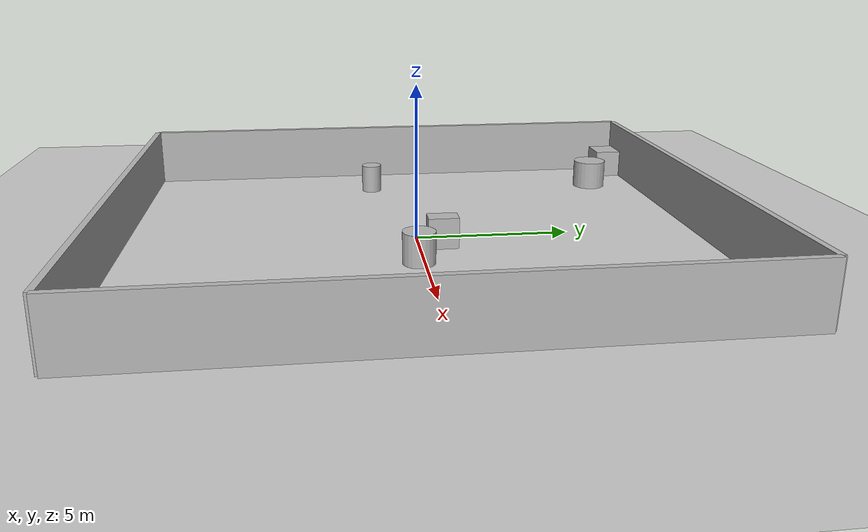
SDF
<?xml version="1.0"?>
<sdf version="1.6">
  <world name="env_49">

    <include><uri>model://ground_plane</uri></include>
    <include><uri>model://sun</uri></include>

    <!-- WALLS -->
    <model name="wall_north"><static>true</static><pose>0 9.343123903825912 1 0 0 0</pose>
      <link name="link"><collision name="collision">
        <geometry><box><size>16.210290307767416 0.2 2</size></box></geometry>
      </collision><visual name="visual">
        <geometry><box><size>16.210290307767416 0.2 2</size></box></geometry>
      </visual></link>
    </model>

    <model name="wall_south"><static>true</static><pose>0 -9.343123903825912 1 0 0 0</pose>
      <link name="link"><collision name="collision">
        <geometry><box><size>16.210290307767416 0.2 2</size></box></geometry>
      </collision><visual name="visual">
        <geometry><box><size>16.210290307767416 0.2 2</size></box></geometry>
      </visual></link>
    </model>

    <model name="wall_east"><static>true</static><pose>8.105145153883708 0 1 0 0 1.57</pose>
      <link name="link"><collision name="collision">
        <geometry><box><size>18.686247807651824 0.2 2</size></box></geometry>
      </collision><visual name="visual">
        <geometry><box><size>18.686247807651824 0.2 2</size></box></geometry>
      </visual></link>
    </model>

    <model name="wall_west"><static>true</static><pose>-8.105145153883708 0 1 0 0 1.57</pose>
      <link name="link"><collision name="collision">
        <geometry><box><size>18.686247807651824 0.2 2</size></box></geometry>
      </collision><visual name="visual">
        <geometry><box><size>18.686247807651824 0.2 2</size></box></geometry>
      </visual></link>
    </model>

    <!-- SENSOR -->

    <model name="lidar_sensor">
      <static>true</static>
      <pose>-4.394592631195201 1.9728508517884684 0.4 0 0 0</pose>
      <link name="link">
        <sensor name="lidar" type="ray">
          <pose>0 0 0 0 0 0</pose>
          <visualize>true</visualize>
          <always_on>true</always_on>
          <update_rate>10</update_rate>
          <ray>
            <scan><horizontal>
              <samples>180</samples>
              <resolution>1</resolution>
              <min_angle>-3.14159</min_angle>
              <max_angle>3.14159</max_angle>
            </horizontal></scan>
            <range><min>0.15</min><max>20.0</max><resolution>0.01</resolution></range>
          </ray>
          <plugin name="lidar_plugin" filename="liblidar_plugin.so"/>
        </sensor>
      </link>
    </model>

    <!-- OBSTACLES -->

    <model name="obstacle_0">
      <static>true</static>
      <pose>0.8506227741994596 0.7422800033876715 0.5 0 0 0</pose>
      <link name="link">
        <collision name="collision">
          <geometry><box><size>0.6 0.97 1.0</size></box></geometry>
        </collision>
        <visual name="visual">
          <geometry><box><size>0.6 0.97 1.0</size></box></geometry>
        </visual>
      </link>
    </model>

    <model name="obstacle_1">
      <static>true</static>
      <pose>-5.496679718227574 7.553643213545527 0.5 0 0 0</pose>
      <link name="link">
        <collision name="collision">
          <geometry><cylinder><radius>0.59</radius><length>1.0</length></cylinder></geometry>
        </collision>
        <visual name="visual">
          <geometry><cylinder><radius>0.59</radius><length>1.0</length></cylinder></geometry>
        </visual>
      </link>
    </model>

    <model name="obstacle_2">
      <static>true</static>
      <pose>2.2235477988380534 -0.173594931517707 0.5 0 0 0</pose>
      <link name="link">
        <collision name="collision">
          <geometry><cylinder><radius>0.51</radius><length>1.0</length></cylinder></geometry>
        </collision>
        <visual name="visual">
          <geometry><cylinder><radius>0.51</radius><length>1.0</length></cylinder></geometry>
        </visual>
      </link>
    </model>

    <model name="obstacle_3">
      <static>true</static>
      <pose>-7.287399920607445 8.835931709993908 0.5 0 0 0</pose>
      <link name="link">
        <collision name="collision">
          <geometry><box><size>1.07 1.09 1.0</size></box></geometry>
        </collision>
        <visual name="visual">
          <geometry><box><size>1.07 1.09 1.0</size></box></geometry>
        </visual>
      </link>
    </model>

    <model name="obstacle_4">
      <static>true</static>
      <pose>-5.805758587427759 -1.0349092616771953 0.5 0 0 0</pose>
      <link name="link">
        <collision name="collision">
          <geometry><cylinder><radius>0.36</radius><length>1.0</length></cylinder></geometry>
        </collision>
        <visual name="visual">
          <geometry><cylinder><radius>0.36</radius><length>1.0</length></cylinder></geometry>
        </visual>
      </link>
    </model>

  </world>
</sdf>
